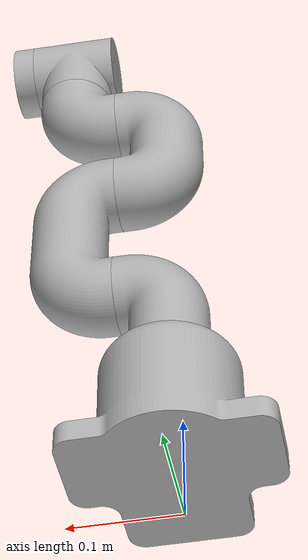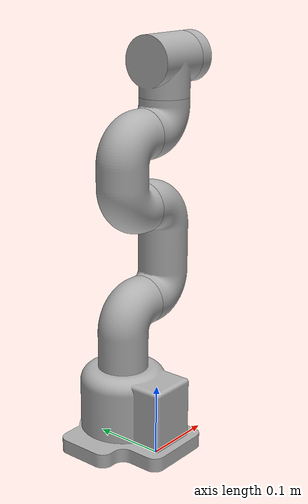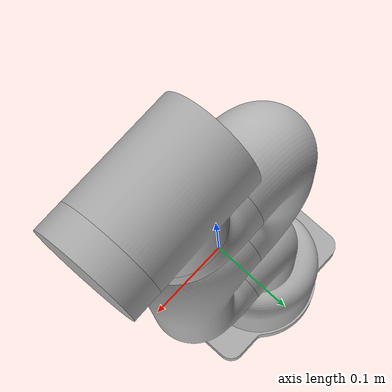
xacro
<?xml version="1.0"?>
<robot xmlns:xacro="http://www.ros.org/wiki/xacro" name="mycobot320">
    <xacro:arg name="initial_positions_file" default="initial_positions.yaml" />

    <!-- Import mycobot320 urdf file -->
    <xacro:include filename="$(find mycobot_description)/urdf/mycobot.xacro" />

    <!-- Import control_xacro -->
    <xacro:include filename="mycobot320.ros2_control.xacro" />

    <xacro:mycobot320_ros2_control name="FakeSystem" initial_positions_file="$(arg initial_positions_file)"/>

</robot>

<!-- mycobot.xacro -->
<robot name="mycobot320" xmlns:xacro="http://www.ros.org/wiki/xacro">

<xacro:include filename="$(find mycobot_description)/urdf/materials.xacro" />
  <link name="base_link">
    <inertial>
      <origin xyz="-1.3994637957346424e-08 0.046320428630226694 0.053625500753973876" rpy="0 0 0"/>
      <mass value="12.899764355948896"/>
      <inertia ixx="0.033823" iyy="0.028162" izz="0.035033" ixy="0.0" iyz="-0.000755" ixz="0.0"/>
    </inertial>
    <visual>
      <origin xyz="0 0 0" rpy="0 0 0"/>
      <geometry>
        <mesh filename="file://$(find mycobot_description)/meshes/base_link.stl" scale="0.001 0.001 0.001"/>
      </geometry>
      <material name="silver"/>
    </visual>
    <collision>
      <origin xyz="0 0 0" rpy="0 0 0"/>
      <geometry>
        <mesh filename="file://$(find mycobot_description)/meshes/base_link.stl" scale="0.001 0.001 0.001"/>
      </geometry>
    </collision>
  </link>

  <link name="link1">
    <inertial>
      <origin xyz="0.0068967662247303866 -3.47113377312247e-07 0.055490142550686156" rpy="0 0 0"/>
      <mass value="3.4735206294395446"/>
      <inertia ixx="0.004461" iyy="0.004757" izz="0.002424" ixy="0.0" iyz="0.0" ixz="-0.000777"/>
    </inertial>
    <visual>
      <origin xyz="0.0 -0.060072 -0.114761" rpy="0 0 0"/>
      <geometry>
        <mesh filename="file://$(find mycobot_description)/meshes/link1.stl" scale="0.001 0.001 0.001"/>
      </geometry>
      <material name="silver"/>
    </visual>
    <collision>
      <origin xyz="0.0 -0.060072 -0.114761" rpy="0 0 0"/>
      <geometry>
        <mesh filename="file://$(find mycobot_description)/meshes/link1.stl" scale="0.001 0.001 0.001"/>
      </geometry>
    </collision>
  </link>

  <link name="link2">
    <inertial>
      <origin xyz="0.036906585755672516 -3.4711337715265245e-07 0.06799995568162967" rpy="0 0 0"/>
      <mass value="5.91988968680626"/>
      <inertia ixx="0.0188" iyy="0.019335" izz="0.004161" ixy="0.0" iyz="-0.0" ixz="0.0"/>
    </inertial>
    <visual>
      <origin xyz="-0.045 -0.060072 -0.199761" rpy="0 0 0"/>
      <geometry>
        <mesh filename="file://$(find mycobot_description)/meshes/link2.stl" scale="0.001 0.001 0.001"/>
      </geometry>
      <material name="silver"/>
    </visual>
    <collision>
      <origin xyz="-0.045 -0.060072 -0.199761" rpy="0 0 0"/>
      <geometry>
        <mesh filename="file://$(find mycobot_description)/meshes/link2.stl" scale="0.001 0.001 0.001"/>
      </geometry>
    </collision>
  </link>

  <link name="link3">
    <inertial>
      <origin xyz="-0.03502268825299208 3.0162871079368603e-05 0.04949994627901161" rpy="0 0 0"/>
      <mass value="4.802107093668197"/>
      <inertia ixx="0.01014" iyy="0.010584" izz="0.003386" ixy="0.0" iyz="-4e-06" ixz="0.0"/>
    </inertial>
    <visual>
      <origin xyz="-0.045 -0.060072 -0.335761" rpy="0 0 0"/>
      <geometry>
        <mesh filename="file://$(find mycobot_description)/meshes/link3.stl" scale="0.001 0.001 0.001"/>
      </geometry>
      <material name="silver"/>
    </visual>
    <collision>
      <origin xyz="-0.045 -0.060072 -0.335761" rpy="0 0 0"/>
      <geometry>
        <mesh filename="file://$(find mycobot_description)/meshes/link3.stl" scale="0.001 0.001 0.001"/>
      </geometry>
    </collision>
  </link>

  <link name="link4">
    <inertial>
      <origin xyz="0.034423872869192323 6.191592391645295e-06 0.010576061998245623" rpy="0 0 0"/>
      <mass value="2.265107015236222"/>
      <inertia ixx="0.001595" iyy="0.001803" izz="0.001595" ixy="-0.0" iyz="-0.0" ixz="-0.000324"/>
    </inertial>
    <visual>
      <origin xyz="-0.045 -0.060133 -0.434761" rpy="0 0 0"/>
      <geometry>
        <mesh filename="file://$(find mycobot_description)/meshes/link4.stl" scale="0.001 0.001 0.001"/>
      </geometry>
      <material name="silver"/>
    </visual>
    <collision>
      <origin xyz="-0.045 -0.060133 -0.434761" rpy="0 0 0"/>
      <geometry>
        <mesh filename="file://$(find mycobot_description)/meshes/link4.stl" scale="0.001 0.001 0.001"/>
      </geometry>
    </collision>
  </link>

  <link name="link5">
    <inertial>
      <origin xyz="5.551115123125783e-17 2.6368392026507315e-05 0.04211661683454615" rpy="0 0 0"/>
      <mass value="3.029827579494103"/>
      <inertia ixx="0.0025" iyy="0.002976" izz="0.002441" ixy="0.0" iyz="-0.0" ixz="0.0"/>
    </inertial>
    <visual>
      <origin xyz="-0.09 -0.06016 -0.479761" rpy="0 0 0"/>
      <geometry>
        <mesh filename="file://$(find mycobot_description)/meshes/link5.stl" scale="0.001 0.001 0.001"/>
      </geometry>
      <material name="silver"/>
    </visual>
    <collision>
      <origin xyz="-0.09 -0.06016 -0.479761" rpy="0 0 0"/>
      <geometry>
        <mesh filename="file://$(find mycobot_description)/meshes/link5.stl" scale="0.001 0.001 0.001"/>
      </geometry>
    </collision>
  </link>

  <link name="link6">
    <inertial>
      <origin xyz="0.010000000000000203 2.2737115904641891e-07 -8.116903615906779e-08" rpy="0 0 0"/>
      <mass value="0.6042068071016569"/>
      <inertia ixx="0.00037" iyy="0.000205" izz="0.000205" ixy="0.0" iyz="0.0" ixz="0.0"/>
    </inertial>
    <visual>
      <origin xyz="-0.13 -0.060191 -0.529761" rpy="0 0 0"/>
      <geometry>
        <mesh filename="file://$(find mycobot_description)/meshes/link6.stl" scale="0.001 0.001 0.001"/>
      </geometry>
      <material name="silver"/>
    </visual>
    <collision>
      <origin xyz="-0.13 -0.060191 -0.529761" rpy="0 0 0"/>
      <geometry>
        <mesh filename="file://$(find mycobot_description)/meshes/link6.stl" scale="0.001 0.001 0.001"/>
      </geometry>
    </collision>
  </link>

  <!-- joint -->

  <joint name="joint2_to_joint1" type="revolute">
    <origin xyz="0.0 0.060072 0.114761" rpy="0 0 0"/>
    <parent link="base_link"/>
    <child link="link1"/>
    <axis xyz="-0.0 0.0 1.0"/>
    <limit effort = "1000.0" lower = "-2.87" upper = "2.87" velocity = "0"/>
  </joint>

  <joint name="joint3_to_joint2" type="revolute">
    <origin xyz="0.045 0.0 0.085" rpy="0 0 0"/>
    <parent link="link1"/>
    <child link="link2"/>
    <axis xyz="1.0 0.0 0.0"/>
    <limit effort = "1000.0" lower = "-2.87" upper = "2.87" velocity = "0"/>
  </joint>

  <joint name="joint4_to_joint3" type="revolute">
    <origin xyz="0.0 0.0 0.136" rpy="0 0 0"/>
    <parent link="link2"/>
    <child link="link3"/>
    <axis xyz="-1.0 0.0 -0.0"/>
    <limit effort = "1000.0" lower = "-2.87" upper = "2.87" velocity = "0"/>
  </joint>

  <joint name="joint5_to_joint4" type="revolute">
    <origin xyz="0.0 6.1e-05 0.099" rpy="0 0 0"/>
    <parent link="link3"/>
    <child link="link4"/>
    <axis xyz="1.0 -0.0 0.0"/>
    <limit effort = "1000.0" lower = "-2.87" upper = "2.87" velocity = "0"/>
  </joint>

  <joint name="joint6_to_joint5" type="revolute">
    <origin xyz="0.045 2.7e-05 0.045" rpy="0 0 0"/>
    <parent link="link4"/>
    <child link="link5"/>
    <axis xyz="-0.0 0.000616 1.0"/>
    <limit effort = "1000.0" lower = "-2.87" upper = "2.87" velocity = "0"/>
  </joint>

  <joint name="joint6output_to_joint6" type="revolute">
    <origin xyz="0.04 3.1e-05 0.05" rpy="0 0 0"/>
    <parent link="link5"/>
    <child link="link6"/>
    <axis xyz="1.0 -0.0 0.0"/>
    <limit effort = "1000.0" lower = "-2.87" upper = "2.87" velocity = "0"/>
  </joint>

<!-- gripper joints -->
</robot>

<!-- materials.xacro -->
<robot name="mycobot" xmlns:xacro="http://www.ros.org/wiki/xacro" >

<material name="silver">
  <color rgba="0.700 0.700 0.700 1.000"/>
</material>

</robot>
